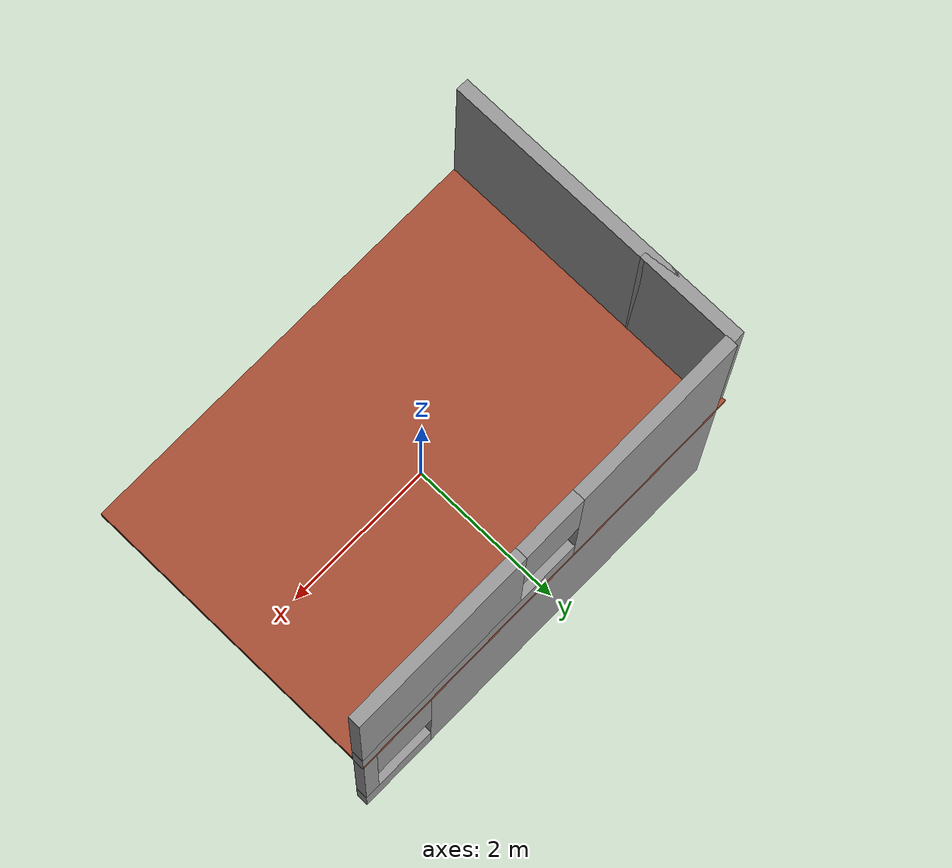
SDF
<?xml version='1.0'?>
<sdf version='1.6'>
  <model name='wall_with_ceiling'>
    <pose frame=''>0.451643 2.09547 0 0 -0 0</pose>
    <link name='Floor_0'>
      <collision name='Floor_0_Collision'>
        <geometry>
          <box>
            <size>5.39061 3.79301 0.1</size>
          </box>
        </geometry>
        <pose frame=''>0 0 0.05 0 -0 0</pose>
      </collision>
      <visual name='Floor_0_Visual'>
        <pose frame=''>0 0 0.05 0 -0 0</pose>
        <geometry>
          <box>
            <size>5.39061 3.79301 0.1</size>
          </box>
        </geometry>
        <material>
          <script>
            <uri>file://media/materials/scripts/gazebo.material</uri>
            <name>Gazebo/Bricks</name>
          </script>
          <ambient>0.996078 0.47451 0.0196078 1</ambient>
        </material>
      </visual>
      <pose frame=''>-0.06161 -1.8215 2.5 0 -0 0</pose>
    </link>
    <link name='Wall_0'>
      <pose frame=''>0 0 0 0 -0 0</pose>
      <visual name='Wall_0_Visual_0'>
        <pose frame=''>-0.496936 0 1.25 0 -0 0</pose>
        <geometry>
          <box>
            <size>4.25613 0.15 2.5</size>
          </box>
        </geometry>
        <material>
          <script>
            <uri>file://media/materials/scripts/gazebo.material</uri>
            <name>Gazebo/Grey</name>
          </script>
          <ambient>1 1 1 1</ambient>
        </material>
      </visual>
      <collision name='Wall_0_Collision_0'>
        <geometry>
          <box>
            <size>4.25613 0.15 2.5</size>
          </box>
        </geometry>
        <pose frame=''>-0.496936 0 1.25 0 -0 0</pose>
      </collision>
      <visual name='Wall_0_Visual_1'>
        <pose frame=''>2.12806 0 0.25 0 -0 0</pose>
        <geometry>
          <box>
            <size>0.993873 0.15 0.5</size>
          </box>
        </geometry>
        <material>
          <script>
            <uri>file://media/materials/scripts/gazebo.material</uri>
            <name>Gazebo/Grey</name>
          </script>
          <ambient>1 1 1 1</ambient>
        </material>
      </visual>
      <collision name='Wall_0_Collision_1'>
        <geometry>
          <box>
            <size>0.993873 0.15 0.5</size>
          </box>
        </geometry>
        <pose frame=''>2.12806 0 0.25 0 -0 0</pose>
      </collision>
      <visual name='Wall_0_Visual_2'>
        <pose frame=''>2.52806 0 1.5 0 -0 0</pose>
        <geometry>
          <box>
            <size>0.193873 0.15 2</size>
          </box>
        </geometry>
        <material>
          <script>
            <uri>file://media/materials/scripts/gazebo.material</uri>
            <name>Gazebo/Grey</name>
          </script>
          <ambient>1 1 1 1</ambient>
        </material>
      </visual>
      <collision name='Wall_0_Collision_2'>
        <geometry>
          <box>
            <size>0.193873 0.15 2</size>
          </box>
        </geometry>
        <pose frame=''>2.52806 0 1.5 0 -0 0</pose>
      </collision>
      <visual name='Wall_0_Visual_3'>
        <pose frame=''>2.03113 0 1.9 0 -0 0</pose>
        <geometry>
          <box>
            <size>0.8 0.15 1.2</size>
          </box>
        </geometry>
        <material>
          <script>
            <uri>file://media/materials/scripts/gazebo.material</uri>
            <name>Gazebo/Grey</name>
          </script>
          <ambient>1 1 1 1</ambient>
        </material>
      </visual>
      <collision name='Wall_0_Collision_3'>
        <geometry>
          <box>
            <size>0.8 0.15 1.2</size>
          </box>
        </geometry>
        <pose frame=''>2.03113 0 1.9 0 -0 0</pose>
      </collision>
    </link>
    <link name='Wall_2'>
      <pose frame=''>0.008696 0 2.5 0 -0 0</pose>
      <visual name='Wall_2_Visual_0'>
        <pose frame=''>-1.54476 0 1.25 0 -0 0</pose>
        <geometry>
          <box>
            <size>2.16047 0.15 2.5</size>
          </box>
        </geometry>
        <material>
          <script>
            <uri>file://media/materials/scripts/gazebo.material</uri>
            <name>Gazebo/Grey</name>
          </script>
          <ambient>1 1 1 1</ambient>
        </material>
      </visual>
      <collision name='Wall_2_Collision_0'>
        <geometry>
          <box>
            <size>2.16047 0.15 2.5</size>
          </box>
        </geometry>
        <pose frame=''>-1.54476 0 1.25 0 -0 0</pose>
      </collision>
      <visual name='Wall_2_Visual_1'>
        <pose frame=''>1.08024 0 0.25 0 -0 0</pose>
        <geometry>
          <box>
            <size>3.08953 0.15 0.5</size>
          </box>
        </geometry>
        <material>
          <script>
            <uri>file://media/materials/scripts/gazebo.material</uri>
            <name>Gazebo/Grey</name>
          </script>
          <ambient>1 1 1 1</ambient>
        </material>
      </visual>
      <collision name='Wall_2_Collision_1'>
        <geometry>
          <box>
            <size>3.08953 0.15 0.5</size>
          </box>
        </geometry>
        <pose frame=''>1.08024 0 0.25 0 -0 0</pose>
      </collision>
      <visual name='Wall_2_Visual_2'>
        <pose frame=''>1.48024 0 1.5 0 -0 0</pose>
        <geometry>
          <box>
            <size>2.28952 0.15 2</size>
          </box>
        </geometry>
        <material>
          <script>
            <uri>file://media/materials/scripts/gazebo.material</uri>
            <name>Gazebo/Grey</name>
          </script>
          <ambient>1 1 1 1</ambient>
        </material>
      </visual>
      <collision name='Wall_2_Collision_2'>
        <geometry>
          <box>
            <size>2.28952 0.15 2</size>
          </box>
        </geometry>
        <pose frame=''>1.48024 0 1.5 0 -0 0</pose>
      </collision>
      <visual name='Wall_2_Visual_3'>
        <pose frame=''>-0.064525 0 1.9 0 -0 0</pose>
        <geometry>
          <box>
            <size>0.8 0.15 1.2</size>
          </box>
        </geometry>
        <material>
          <script>
            <uri>file://media/materials/scripts/gazebo.material</uri>
            <name>Gazebo/Grey</name>
          </script>
          <ambient>1 1 1 1</ambient>
        </material>
      </visual>
      <collision name='Wall_2_Collision_3'>
        <geometry>
          <box>
            <size>0.8 0.15 1.2</size>
          </box>
        </geometry>
        <pose frame=''>-0.064525 0 1.9 0 -0 0</pose>
      </collision>
    </link>
    <link name='Wall_3'>
      <collision name='Wall_3_Collision'>
        <geometry>
          <box>
            <size>1.25 0.15 2.5</size>
          </box>
        </geometry>
        <pose frame=''>0 0 1.25 0 -0 0</pose>
      </collision>
      <visual name='Wall_3_Visual'>
        <pose frame=''>0 0 1.25 0 -0 0</pose>
        <geometry>
          <box>
            <size>1.25 0.15 2.5</size>
          </box>
        </geometry>
        <material>
          <script>
            <uri>file://media/materials/scripts/gazebo.material</uri>
            <name>Gazebo/Grey</name>
          </script>
          <ambient>1 1 1 1</ambient>
        </material>
      </visual>
      <pose frame=''>-2.68192 -0.593006 2.5 0 -0 1.5708</pose>
    </link>
    <link name='Wall_4'>
      <collision name='Wall_4_Collision'>
        <geometry>
          <box>
            <size>3.75 0.15 2.5</size>
          </box>
        </geometry>
        <pose frame=''>0 0 1.25 0 -0 0</pose>
      </collision>
      <visual name='Wall_4_Visual'>
        <pose frame=''>0 0 1.25 0 -0 0</pose>
        <geometry>
          <box>
            <size>3.75 0.15 2.5</size>
          </box>
        </geometry>
        <material>
          <script>
            <uri>file://media/materials/scripts/gazebo.material</uri>
            <name>Gazebo/Grey</name>
          </script>
          <ambient>1 1 1 1</ambient>
        </material>
      </visual>
      <pose frame=''>-2.68192 -1.84301 2.5 0 0 -1.5708</pose>
    </link>
    <static>1</static>
  </model>
</sdf>
